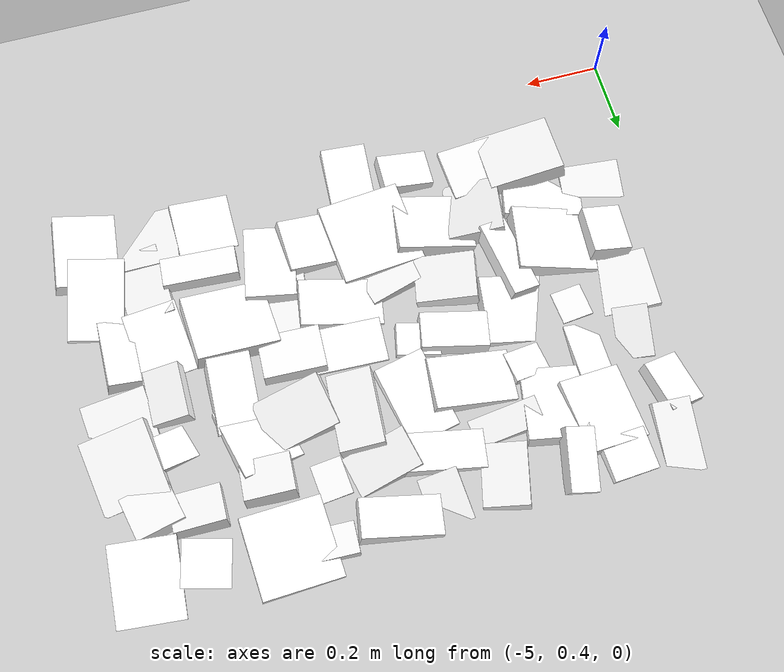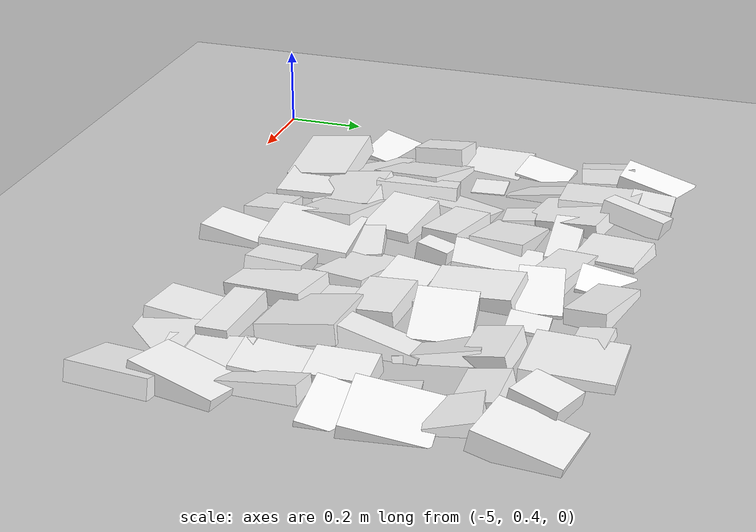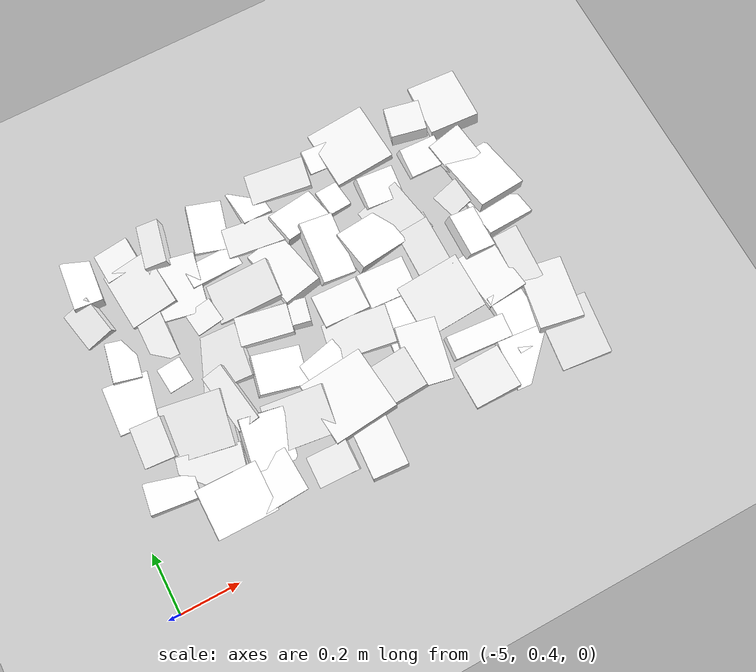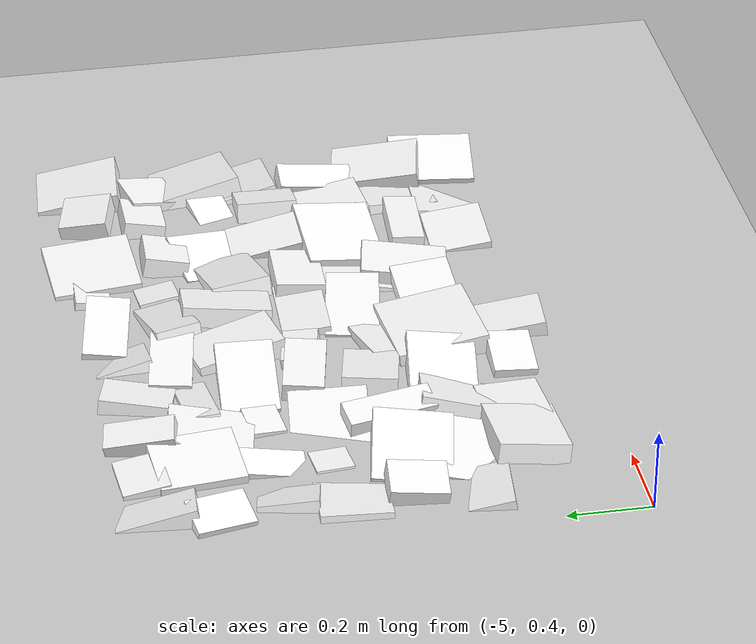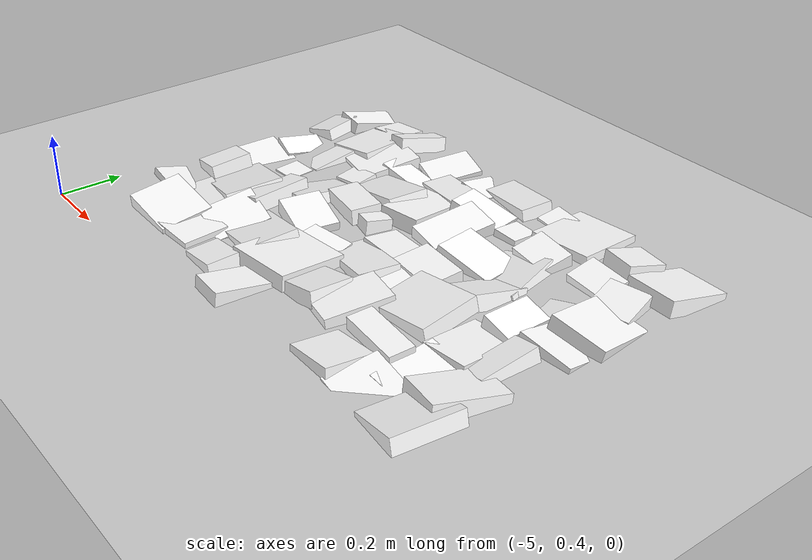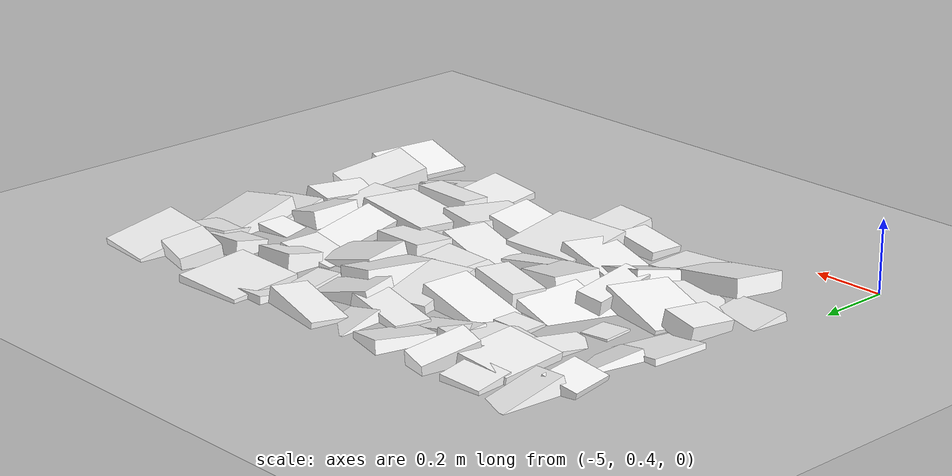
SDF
<sdf version="1.7">
 <world name="default">
  <include><uri>model://sun</uri></include>
  <include><uri>model://ground_plane</uri></include>
  <model name="static_environment">
   <static>true</static>
   <link name="region_10">
    <pose>-3.473362750436614 1.4968765971506124 0.008497881621787752 0.21216534981599583 0.05971173338387331 3.052792866354407</pose>
    <collision name="region_10_collision">
     <geometry><box><size>0.1706078242711454 0.20436977434464226 0.05</size></box></geometry>
     <surface><friction><ode><mu>1.0</mu><mu2>1.0</mu2></ode></friction></surface>
    </collision>
    <visual name="region_10_visual">
     <geometry><box><size>0.1706078242711454 0.20436977434464226 0.05</size></box></geometry>
     <material><ambient>1.0 1.0 1.0 1.0</ambient><diffuse>1.0 1.0 1.0 1.0</diffuse></material>
    </visual>
   </link>
   <link name="region_11">
    <pose>-3.6224159671087985 1.4945103725620028 0.022327791118140157 0.1785952794159718 0.0944638330162288 2.89314398437617</pose>
    <collision name="region_11_collision">
     <geometry><box><size>0.12292144664003718 0.11871850275099793 0.05</size></box></geometry>
     <surface><friction><ode><mu>1.0</mu><mu2>1.0</mu2></ode></friction></surface>
    </collision>
    <visual name="region_11_visual">
     <geometry><box><size>0.12292144664003718 0.11871850275099793 0.05</size></box></geometry>
     <material><ambient>1.0 1.0 1.0 1.0</ambient><diffuse>1.0 1.0 1.0 1.0</diffuse></material>
    </visual>
   </link>
   <link name="region_12">
    <pose>-3.829506450537181 1.5087423389290238 -0.005739150987846293 0.04787094714345319 0.05540352775220464 3.191309594198669</pose>
    <collision name="region_12_collision">
     <geometry><box><size>0.2100155249485474 0.2129797306443485 0.05</size></box></geometry>
     <surface><friction><ode><mu>1.0</mu><mu2>1.0</mu2></ode></friction></surface>
    </collision>
    <visual name="region_12_visual">
     <geometry><box><size>0.2100155249485474 0.2129797306443485 0.05</size></box></geometry>
     <material><ambient>1.0 1.0 1.0 1.0</ambient><diffuse>1.0 1.0 1.0 1.0</diffuse></material>
    </visual>
   </link>
   <link name="region_13">
    <pose>-3.931816957192507 1.5248667110693215 -0.015266268547873147 -0.14469618057355804 -0.061279608819677645 3.092923605086337</pose>
    <collision name="region_13_collision">
     <geometry><box><size>0.12184259952648774 0.0854810512144632 0.05</size></box></geometry>
     <surface><friction><ode><mu>1.0</mu><mu2>1.0</mu2></ode></friction></surface>
    </collision>
    <visual name="region_13_visual">
     <geometry><box><size>0.12184259952648774 0.0854810512144632 0.05</size></box></geometry>
     <material><ambient>1.0 1.0 1.0 1.0</ambient><diffuse>1.0 1.0 1.0 1.0</diffuse></material>
    </visual>
   </link>
   <link name="region_14">
    <pose>-4.104720120952562 1.509072116500127 0.000582147639666554 -0.08308375724269845 0.13923671692967232 2.9592175672838055</pose>
    <collision name="region_14_collision">
     <geometry><box><size>0.20777665416491922 0.10532315150551087 0.05</size></box></geometry>
     <surface><friction><ode><mu>1.0</mu><mu2>1.0</mu2></ode></friction></surface>
    </collision>
    <visual name="region_14_visual">
     <geometry><box><size>0.20777665416491922 0.10532315150551087 0.05</size></box></geometry>
     <material><ambient>1.0 1.0 1.0 1.0</ambient><diffuse>1.0 1.0 1.0 1.0</diffuse></material>
    </visual>
   </link>
   <link name="region_15">
    <pose>-4.232650342042872 1.4854369557738816 -0.01952572893342406 0.21533800719094315 -0.1868063581127013 3.194002695181782</pose>
    <collision name="region_15_collision">
     <geometry><box><size>0.10375661583833336 0.1353883721843947 0.05</size></box></geometry>
     <surface><friction><ode><mu>1.0</mu><mu2>1.0</mu2></ode></friction></surface>
    </collision>
    <visual name="region_15_visual">
     <geometry><box><size>0.10375661583833336 0.1353883721843947 0.05</size></box></geometry>
     <material><ambient>1.0 1.0 1.0 1.0</ambient><diffuse>1.0 1.0 1.0 1.0</diffuse></material>
    </visual>
   </link>
   <link name="region_16">
    <pose>-4.390292452083434 1.4742859318742112 -0.007227853759948867 -0.08263796126161371 -0.1612468163916323 2.8955016698911407</pose>
    <collision name="region_16_collision">
     <geometry><box><size>0.11851829048817407 0.16897940878838555 0.05</size></box></geometry>
     <surface><friction><ode><mu>1.0</mu><mu2>1.0</mu2></ode></friction></surface>
    </collision>
    <visual name="region_16_visual">
     <geometry><box><size>0.11851829048817407 0.16897940878838555 0.05</size></box></geometry>
     <material><ambient>1.0 1.0 1.0 1.0</ambient><diffuse>1.0 1.0 1.0 1.0</diffuse></material>
    </visual>
   </link>
   <link name="region_17">
    <pose>-4.574782697448905 1.4891763544308383 0.02343091644849834 0.18679127561850645 0.20639199708541217 2.976449130465943</pose>
    <collision name="region_17_collision">
     <geometry><box><size>0.07656576031420817 0.1646188206958685 0.05</size></box></geometry>
     <surface><friction><ode><mu>1.0</mu><mu2>1.0</mu2></ode></friction></surface>
    </collision>
    <visual name="region_17_visual">
     <geometry><box><size>0.07656576031420817 0.1646188206958685 0.05</size></box></geometry>
     <material><ambient>1.0 1.0 1.0 1.0</ambient><diffuse>1.0 1.0 1.0 1.0</diffuse></material>
    </visual>
   </link>
   <link name="region_18">
    <pose>-4.7004037098366815 1.5028867628276785 -0.004727280645749489 0.12120515658839681 0.07186650788260135 3.2211716753573354</pose>
    <collision name="region_18_collision">
     <geometry><box><size>0.12252118510335676 0.1112670353571094 0.05</size></box></geometry>
     <surface><friction><ode><mu>1.0</mu><mu2>1.0</mu2></ode></friction></surface>
    </collision>
    <visual name="region_18_visual">
     <geometry><box><size>0.12252118510335676 0.1112670353571094 0.05</size></box></geometry>
     <material><ambient>1.0 1.0 1.0 1.0</ambient><diffuse>1.0 1.0 1.0 1.0</diffuse></material>
    </visual>
   </link>
   <link name="region_19">
    <pose>-4.841374151645391 1.4881579180459148 -0.006208605234027005 0.24431393258757367 -0.07770252986004095 3.063222500325638</pose>
    <collision name="region_19_collision">
     <geometry><box><size>0.09738355279015998 0.18698756847086337 0.05</size></box></geometry>
     <surface><friction><ode><mu>1.0</mu><mu2>1.0</mu2></ode></friction></surface>
    </collision>
    <visual name="region_19_visual">
     <geometry><box><size>0.09738355279015998 0.18698756847086337 0.05</size></box></geometry>
     <material><ambient>1.0 1.0 1.0 1.0</ambient><diffuse>1.0 1.0 1.0 1.0</diffuse></material>
    </visual>
   </link>
   <link name="region_30">
    <pose>-3.5234894314026612 1.3313077117943863 0.0009624402382346839 -0.19368886047820688 -0.008037205267920233 3.3572441885021815</pose>
    <collision name="region_30_collision">
     <geometry><box><size>0.12956067281717265 0.12503417433243483 0.05</size></box></geometry>
     <surface><friction><ode><mu>1.0</mu><mu2>1.0</mu2></ode></friction></surface>
    </collision>
    <visual name="region_30_visual">
     <geometry><box><size>0.12956067281717265 0.12503417433243483 0.05</size></box></geometry>
     <material><ambient>1.0 1.0 1.0 1.0</ambient><diffuse>1.0 1.0 1.0 1.0</diffuse></material>
    </visual>
   </link>
   <link name="region_31">
    <pose>-3.631545388154425 1.3597970003477404 0.005671755726946132 -0.18805892253738415 -0.0742292266154223 3.128049900804863</pose>
    <collision name="region_31_collision">
     <geometry><box><size>0.134828279164239 0.10205879768003219 0.05</size></box></geometry>
     <surface><friction><ode><mu>1.0</mu><mu2>1.0</mu2></ode></friction></surface>
    </collision>
    <visual name="region_31_visual">
     <geometry><box><size>0.134828279164239 0.10205879768003219 0.05</size></box></geometry>
     <material><ambient>1.0 1.0 1.0 1.0</ambient><diffuse>1.0 1.0 1.0 1.0</diffuse></material>
    </visual>
   </link>
   <link name="region_32">
    <pose>-3.8162620925565705 1.3287364593638857 0.011471256058425666 -0.18849419529501205 -0.09011101296383955 3.0873298103264855</pose>
    <collision name="region_32_collision">
     <geometry><box><size>0.13175779509372743 0.10828854993342196 0.05</size></box></geometry>
     <surface><friction><ode><mu>1.0</mu><mu2>1.0</mu2></ode></friction></surface>
    </collision>
    <visual name="region_32_visual">
     <geometry><box><size>0.13175779509372743 0.10828854993342196 0.05</size></box></geometry>
     <material><ambient>1.0 1.0 1.0 1.0</ambient><diffuse>1.0 1.0 1.0 1.0</diffuse></material>
    </visual>
   </link>
   <link name="region_33">
    <pose>-3.9696359689108736 1.3663994010388827 -0.01304007294788302 0.12358504361697314 -0.07625290767795234 3.222106684100043</pose>
    <collision name="region_33_collision">
     <geometry><box><size>0.08069118291779179 0.09825169303578776 0.05</size></box></geometry>
     <surface><friction><ode><mu>1.0</mu><mu2>1.0</mu2></ode></friction></surface>
    </collision>
    <visual name="region_33_visual">
     <geometry><box><size>0.08069118291779179 0.09825169303578776 0.05</size></box></geometry>
     <material><ambient>1.0 1.0 1.0 1.0</ambient><diffuse>1.0 1.0 1.0 1.0</diffuse></material>
    </visual>
   </link>
   <link name="region_34">
    <pose>-4.104616422439544 1.36078717767662 0.005267264312795384 0.05434025327083025 -0.23025828911216734 3.3442179773874794</pose>
    <collision name="region_34_collision">
     <geometry><box><size>0.17318309997485784 0.10994639143384492 0.05</size></box></geometry>
     <surface><friction><ode><mu>1.0</mu><mu2>1.0</mu2></ode></friction></surface>
    </collision>
    <visual name="region_34_visual">
     <geometry><box><size>0.17318309997485784 0.10994639143384492 0.05</size></box></geometry>
     <material><ambient>1.0 1.0 1.0 1.0</ambient><diffuse>1.0 1.0 1.0 1.0</diffuse></material>
    </visual>
   </link>
   <link name="region_35">
    <pose>-4.2566006963007395 1.3746665404310054 -0.002393422491329074 -0.03335343160421389 0.10480613468346567 2.9719510689256263</pose>
    <collision name="region_35_collision">
     <geometry><box><size>0.20835845713492265 0.10180219240691474 0.05</size></box></geometry>
     <surface><friction><ode><mu>1.0</mu><mu2>1.0</mu2></ode></friction></surface>
    </collision>
    <visual name="region_35_visual">
     <geometry><box><size>0.20835845713492265 0.10180219240691474 0.05</size></box></geometry>
     <material><ambient>1.0 1.0 1.0 1.0</ambient><diffuse>1.0 1.0 1.0 1.0</diffuse></material>
    </visual>
   </link>
   <link name="region_36">
    <pose>-4.425429314786352 1.3427773074026264 -0.01253182385497399 0.006311672440037053 -0.17825987154003414 3.212327750667861</pose>
    <collision name="region_36_collision">
     <geometry><box><size>0.20456277387589664 0.07707938721720528 0.05</size></box></geometry>
     <surface><friction><ode><mu>1.0</mu><mu2>1.0</mu2></ode></friction></surface>
    </collision>
    <visual name="region_36_visual">
     <geometry><box><size>0.20456277387589664 0.07707938721720528 0.05</size></box></geometry>
     <material><ambient>1.0 1.0 1.0 1.0</ambient><diffuse>1.0 1.0 1.0 1.0</diffuse></material>
    </visual>
   </link>
   <link name="region_37">
    <pose>-4.563727412231285 1.3304996041569328 0.001321638220872317 -0.12907229563369083 -0.021892943865762793 2.94974100567346</pose>
    <collision name="region_37_collision">
     <geometry><box><size>0.15586582556977865 0.19948712636549865 0.05</size></box></geometry>
     <surface><friction><ode><mu>1.0</mu><mu2>1.0</mu2></ode></friction></surface>
    </collision>
    <visual name="region_37_visual">
     <geometry><box><size>0.15586582556977865 0.19948712636549865 0.05</size></box></geometry>
     <material><ambient>1.0 1.0 1.0 1.0</ambient><diffuse>1.0 1.0 1.0 1.0</diffuse></material>
    </visual>
   </link>
   <link name="region_38">
    <pose>-4.67513499138701 1.377287783219825 0.004076468464325696 0.0073451529404567895 0.13835810596043274 3.2275486630410373</pose>
    <collision name="region_38_collision">
     <geometry><box><size>0.16497099421032754 0.20049523390078045 0.05</size></box></geometry>
     <surface><friction><ode><mu>1.0</mu><mu2>1.0</mu2></ode></friction></surface>
    </collision>
    <visual name="region_38_visual">
     <geometry><box><size>0.16497099421032754 0.20049523390078045 0.05</size></box></geometry>
     <material><ambient>1.0 1.0 1.0 1.0</ambient><diffuse>1.0 1.0 1.0 1.0</diffuse></material>
    </visual>
   </link>
   <link name="region_39">
    <pose>-4.870611345780961 1.3542661527741293 0.0004551544841737039 -0.023110741954973257 0.24550563598248448 3.3415732761676304</pose>
    <collision name="region_39_collision">
     <geometry><box><size>0.09956813109950557 0.13913375327888608 0.05</size></box></geometry>
     <surface><friction><ode><mu>1.0</mu><mu2>1.0</mu2></ode></friction></surface>
    </collision>
    <visual name="region_39_visual">
     <geometry><box><size>0.09956813109950557 0.13913375327888608 0.05</size></box></geometry>
     <material><ambient>1.0 1.0 1.0 1.0</ambient><diffuse>1.0 1.0 1.0 1.0</diffuse></material>
    </visual>
   </link>
   <link name="region_50">
    <pose>-3.480928307321091 1.2037607284650844 0.0029844818684453094 0.17900631935587558 -0.14723269115528503 3.2493704583024297</pose>
    <collision name="region_50_collision">
     <geometry><box><size>0.17586759001589866 0.19882283950283314 0.05</size></box></geometry>
     <surface><friction><ode><mu>1.0</mu><mu2>1.0</mu2></ode></friction></surface>
    </collision>
    <visual name="region_50_visual">
     <geometry><box><size>0.17586759001589866 0.19882283950283314 0.05</size></box></geometry>
     <material><ambient>1.0 1.0 1.0 1.0</ambient><diffuse>1.0 1.0 1.0 1.0</diffuse></material>
    </visual>
   </link>
   <link name="region_51">
    <pose>-3.6289684788963914 1.1776662093576626 -0.02231428236665782 -0.01468467100861881 0.21937532283309652 3.36526915592996</pose>
    <collision name="region_51_collision">
     <geometry><box><size>0.19738073139330983 0.09289147850770733 0.05</size></box></geometry>
     <surface><friction><ode><mu>1.0</mu><mu2>1.0</mu2></ode></friction></surface>
    </collision>
    <visual name="region_51_visual">
     <geometry><box><size>0.19738073139330983 0.09289147850770733 0.05</size></box></geometry>
     <material><ambient>1.0 1.0 1.0 1.0</ambient><diffuse>1.0 1.0 1.0 1.0</diffuse></material>
    </visual>
   </link>
   <link name="region_52">
    <pose>-3.8148135336707725 1.2086346652459818 -0.01671098211213894 -0.12333865203501837 0.21567775039032122 3.3401658015141544</pose>
    <collision name="region_52_collision">
     <geometry><box><size>0.16301595016087692 0.19697033880860118 0.05</size></box></geometry>
     <surface><friction><ode><mu>1.0</mu><mu2>1.0</mu2></ode></friction></surface>
    </collision>
    <visual name="region_52_visual">
     <geometry><box><size>0.16301595016087692 0.19697033880860118 0.05</size></box></geometry>
     <material><ambient>1.0 1.0 1.0 1.0</ambient><diffuse>1.0 1.0 1.0 1.0</diffuse></material>
    </visual>
   </link>
   <link name="region_53">
    <pose>-3.9270557892126727 1.1804225975723166 0.0003933863012294918 0.049590323640137546 -0.23137801791927143 3.299269132694362</pose>
    <collision name="region_53_collision">
     <geometry><box><size>0.18643594893411278 0.1460255045102985 0.05</size></box></geometry>
     <surface><friction><ode><mu>1.0</mu><mu2>1.0</mu2></ode></friction></surface>
    </collision>
    <visual name="region_53_visual">
     <geometry><box><size>0.18643594893411278 0.1460255045102985 0.05</size></box></geometry>
     <material><ambient>1.0 1.0 1.0 1.0</ambient><diffuse>1.0 1.0 1.0 1.0</diffuse></material>
    </visual>
   </link>
   <link name="region_54">
    <pose>-4.0739063321990425 1.2174636176579425 0.016345515581136415 -0.09846852410530516 -0.1707248822704766 3.074724854780664</pose>
    <collision name="region_54_collision">
     <geometry><box><size>0.11723854043931331 0.21379516396226508 0.05</size></box></geometry>
     <surface><friction><ode><mu>1.0</mu><mu2>1.0</mu2></ode></friction></surface>
    </collision>
    <visual name="region_54_visual">
     <geometry><box><size>0.11723854043931331 0.21379516396226508 0.05</size></box></geometry>
     <material><ambient>1.0 1.0 1.0 1.0</ambient><diffuse>1.0 1.0 1.0 1.0</diffuse></material>
    </visual>
   </link>
   <link name="region_55">
    <pose>-4.23009598811861 1.220637864679023 0.009669756909560678 0.1489588365182375 -0.01771530415874556 3.3414561040527686</pose>
    <collision name="region_55_collision">
     <geometry><box><size>0.13398832391026191 0.2153750286485532 0.05</size></box></geometry>
     <surface><friction><ode><mu>1.0</mu><mu2>1.0</mu2></ode></friction></surface>
    </collision>
    <visual name="region_55_visual">
     <geometry><box><size>0.13398832391026191 0.2153750286485532 0.05</size></box></geometry>
     <material><ambient>1.0 1.0 1.0 1.0</ambient><diffuse>1.0 1.0 1.0 1.0</diffuse></material>
    </visual>
   </link>
   <link name="region_56">
    <pose>-4.375553415747021 1.2129772958151368 0.00709985102498982 0.012905547001975826 0.22210709675690143 3.0727662746604993</pose>
    <collision name="region_56_collision">
     <geometry><box><size>0.22055254854479442 0.1366784752471267 0.05</size></box></geometry>
     <surface><friction><ode><mu>1.0</mu><mu2>1.0</mu2></ode></friction></surface>
    </collision>
    <visual name="region_56_visual">
     <geometry><box><size>0.22055254854479442 0.1366784752471267 0.05</size></box></geometry>
     <material><ambient>1.0 1.0 1.0 1.0</ambient><diffuse>1.0 1.0 1.0 1.0</diffuse></material>
    </visual>
   </link>
   <link name="region_57">
    <pose>-4.531402227600461 1.2025063731538712 -0.01303486854201365 -0.0789084575708246 0.07882783631365653 3.265805890295087</pose>
    <collision name="region_57_collision">
     <geometry><box><size>0.0959835802704287 0.0840426457400242 0.05</size></box></geometry>
     <surface><friction><ode><mu>1.0</mu><mu2>1.0</mu2></ode></friction></surface>
    </collision>
    <visual name="region_57_visual">
     <geometry><box><size>0.0959835802704287 0.0840426457400242 0.05</size></box></geometry>
     <material><ambient>1.0 1.0 1.0 1.0</ambient><diffuse>1.0 1.0 1.0 1.0</diffuse></material>
    </visual>
   </link>
   <link name="region_58">
    <pose>-4.693642252412237 1.2179616243971907 -0.013784937435933437 -0.1692245233500841 0.12528366364208948 3.085437863658262</pose>
    <collision name="region_58_collision">
     <geometry><box><size>0.08780393824888337 0.16833462766891255 0.05</size></box></geometry>
     <surface><friction><ode><mu>1.0</mu><mu2>1.0</mu2></ode></friction></surface>
    </collision>
    <visual name="region_58_visual">
     <geometry><box><size>0.08780393824888337 0.16833462766891255 0.05</size></box></geometry>
     <material><ambient>1.0 1.0 1.0 1.0</ambient><diffuse>1.0 1.0 1.0 1.0</diffuse></material>
    </visual>
   </link>
   <link name="region_59">
    <pose>-4.8319949755964 1.1910136078336617 -0.015056601178488694 0.1328100015613125 -0.2171663236751663 2.9392929184568803</pose>
    <collision name="region_59_collision">
     <geometry><box><size>0.09323084729013409 0.14065479251009633 0.05</size></box></geometry>
     <surface><friction><ode><mu>1.0</mu><mu2>1.0</mu2></ode></friction></surface>
    </collision>
    <visual name="region_59_visual">
     <geometry><box><size>0.09323084729013409 0.14065479251009633 0.05</size></box></geometry>
     <material><ambient>1.0 1.0 1.0 1.0</ambient><diffuse>1.0 1.0 1.0 1.0</diffuse></material>
    </visual>
   </link>
   <link name="region_70">
    <pose>-3.491235007518494 1.0757883341180117 -0.01366047264301244 0.19851755597599008 -0.12249757079299978 3.202418016284161</pose>
    <collision name="region_70_collision">
     <geometry><box><size>0.17199956367881825 0.13466124031310217 0.05</size></box></geometry>
     <surface><friction><ode><mu>1.0</mu><mu2>1.0</mu2></ode></friction></surface>
    </collision>
    <visual name="region_70_visual">
     <geometry><box><size>0.17199956367881825 0.13466124031310217 0.05</size></box></geometry>
     <material><ambient>1.0 1.0 1.0 1.0</ambient><diffuse>1.0 1.0 1.0 1.0</diffuse></material>
    </visual>
   </link>
   <link name="region_71">
    <pose>-3.6230364368534937 1.0471963687658001 0.011421832009749569 -0.011167872114045019 -0.22162480456825373 3.131703125805108</pose>
    <collision name="region_71_collision">
     <geometry><box><size>0.09718251830032122 0.14906649547310374 0.05</size></box></geometry>
     <surface><friction><ode><mu>1.0</mu><mu2>1.0</mu2></ode></friction></surface>
    </collision>
    <visual name="region_71_visual">
     <geometry><box><size>0.09718251830032122 0.14906649547310374 0.05</size></box></geometry>
     <material><ambient>1.0 1.0 1.0 1.0</ambient><diffuse>1.0 1.0 1.0 1.0</diffuse></material>
    </visual>
   </link>
   <link name="region_72">
    <pose>-3.782638485669364 1.0732215696160659 0.0039395518368402285 0.23951214188447767 0.19850751868958688 3.122491518853824</pose>
    <collision name="region_72_collision">
     <geometry><box><size>0.11461537412358669 0.22075162058865685 0.05</size></box></geometry>
     <surface><friction><ode><mu>1.0</mu><mu2>1.0</mu2></ode></friction></surface>
    </collision>
    <visual name="region_72_visual">
     <geometry><box><size>0.11461537412358669 0.22075162058865685 0.05</size></box></geometry>
     <material><ambient>1.0 1.0 1.0 1.0</ambient><diffuse>1.0 1.0 1.0 1.0</diffuse></material>
    </visual>
   </link>
   <link name="region_73">
    <pose>-3.954733671225889 1.0230104297810685 0.011295745139574154 -0.07839194552425655 -0.030481082231647083 3.090407632894602</pose>
    <collision name="region_73_collision">
     <geometry><box><size>0.16425957500197325 0.11947550413600536 0.05</size></box></geometry>
     <surface><friction><ode><mu>1.0</mu><mu2>1.0</mu2></ode></friction></surface>
    </collision>
    <visual name="region_73_visual">
     <geometry><box><size>0.16425957500197325 0.11947550413600536 0.05</size></box></geometry>
     <material><ambient>1.0 1.0 1.0 1.0</ambient><diffuse>1.0 1.0 1.0 1.0</diffuse></material>
    </visual>
   </link>
   <link name="region_74">
    <pose>-4.093219173894692 1.0333424950157424 -0.009679268526127122 0.117204106528009 0.01192806371981936 3.100997752183631</pose>
    <collision name="region_74_collision">
     <geometry><box><size>0.2043672520689068 0.11664214615330043 0.05</size></box></geometry>
     <surface><friction><ode><mu>1.0</mu><mu2>1.0</mu2></ode></friction></surface>
    </collision>
    <visual name="region_74_visual">
     <geometry><box><size>0.2043672520689068 0.11664214615330043 0.05</size></box></geometry>
     <material><ambient>1.0 1.0 1.0 1.0</ambient><diffuse>1.0 1.0 1.0 1.0</diffuse></material>
    </visual>
   </link>
   <link name="region_75">
    <pose>-4.277975532540291 1.0696635661106113 0.009349955567536282 0.1325342098807925 0.0589887690794354 2.9199039283987456</pose>
    <collision name="region_75_collision">
     <geometry><box><size>0.11452556950313356 0.08471425222467681 0.05</size></box></geometry>
     <surface><friction><ode><mu>1.0</mu><mu2>1.0</mu2></ode></friction></surface>
    </collision>
    <visual name="region_75_visual">
     <geometry><box><size>0.11452556950313356 0.08471425222467681 0.05</size></box></geometry>
     <material><ambient>1.0 1.0 1.0 1.0</ambient><diffuse>1.0 1.0 1.0 1.0</diffuse></material>
    </visual>
   </link>
   <link name="region_76">
    <pose>-4.372000684190178 1.0773626707146435 0.023169408026844897 -0.03278283385112546 0.07225885500322915 2.9307758555612837</pose>
    <collision name="region_76_collision">
     <geometry><box><size>0.17652858064480959 0.09761456554277732 0.05</size></box></geometry>
     <surface><friction><ode><mu>1.0</mu><mu2>1.0</mu2></ode></friction></surface>
    </collision>
    <visual name="region_76_visual">
     <geometry><box><size>0.17652858064480959 0.09761456554277732 0.05</size></box></geometry>
     <material><ambient>1.0 1.0 1.0 1.0</ambient><diffuse>1.0 1.0 1.0 1.0</diffuse></material>
    </visual>
   </link>
   <link name="region_77">
    <pose>-4.5605963805634 1.0506735545128574 -0.015158519418853234 0.06480472551673488 0.24451500826543682 3.0281205584416404</pose>
    <collision name="region_77_collision">
     <geometry><box><size>0.20808565689236805 0.18398983290280238 0.05</size></box></geometry>
     <surface><friction><ode><mu>1.0</mu><mu2>1.0</mu2></ode></friction></surface>
    </collision>
    <visual name="region_77_visual">
     <geometry><box><size>0.20808565689236805 0.18398983290280238 0.05</size></box></geometry>
     <material><ambient>1.0 1.0 1.0 1.0</ambient><diffuse>1.0 1.0 1.0 1.0</diffuse></material>
    </visual>
   </link>
   <link name="region_78">
    <pose>-4.700334947580579 1.073358187110819 -0.022494192682623933 -0.0009050964292098285 -0.040364566616187036 3.2325487801938597</pose>
    <collision name="region_78_collision">
     <geometry><box><size>0.08336678809866709 0.08917953976129367 0.05</size></box></geometry>
     <surface><friction><ode><mu>1.0</mu><mu2>1.0</mu2></ode></friction></surface>
    </collision>
    <visual name="region_78_visual">
     <geometry><box><size>0.08336678809866709 0.08917953976129367 0.05</size></box></geometry>
     <material><ambient>1.0 1.0 1.0 1.0</ambient><diffuse>1.0 1.0 1.0 1.0</diffuse></material>
    </visual>
   </link>
   <link name="region_79">
    <pose>-4.849295872863113 1.0516525113164488 -0.020205250799934817 -0.017132593053686418 -0.1159189016505972 3.0848015500650856</pose>
    <collision name="region_79_collision">
     <geometry><box><size>0.1680042624348622 0.16523833490421933 0.05</size></box></geometry>
     <surface><friction><ode><mu>1.0</mu><mu2>1.0</mu2></ode></friction></surface>
    </collision>
    <visual name="region_79_visual">
     <geometry><box><size>0.1680042624348622 0.16523833490421933 0.05</size></box></geometry>
     <material><ambient>1.0 1.0 1.0 1.0</ambient><diffuse>1.0 1.0 1.0 1.0</diffuse></material>
    </visual>
   </link>
   <link name="region_90">
    <pose>-3.522752644685981 0.9034094931863955 0.002030015380881517 -0.1133726761692857 0.18366987341869911 3.112184939321855</pose>
    <collision name="region_90_collision">
     <geometry><box><size>0.08632195482257947 0.187184255299073 0.05</size></box></geometry>
     <surface><friction><ode><mu>1.0</mu><mu2>1.0</mu2></ode></friction></surface>
    </collision>
    <visual name="region_90_visual">
     <geometry><box><size>0.08632195482257947 0.187184255299073 0.05</size></box></geometry>
     <material><ambient>1.0 1.0 1.0 1.0</ambient><diffuse>1.0 1.0 1.0 1.0</diffuse></material>
    </visual>
   </link>
   <link name="region_91">
    <pose>-3.6315591783065773 0.8947719336226974 -0.011699979228121021 0.11835200727548906 0.014643537939566242 3.243321142662028</pose>
    <collision name="region_91_collision">
     <geometry><box><size>0.1439511231999984 0.197233642775333 0.05</size></box></geometry>
     <surface><friction><ode><mu>1.0</mu><mu2>1.0</mu2></ode></friction></surface>
    </collision>
    <visual name="region_91_visual">
     <geometry><box><size>0.1439511231999984 0.197233642775333 0.05</size></box></geometry>
     <material><ambient>1.0 1.0 1.0 1.0</ambient><diffuse>1.0 1.0 1.0 1.0</diffuse></material>
    </visual>
   </link>
   <link name="region_92">
    <pose>-3.818973115534253 0.8978518623637425 0.01872559915359156 -0.12133246685449334 0.14066915408774605 3.178220320530982</pose>
    <collision name="region_92_collision">
     <geometry><box><size>0.2196333035259809 0.18890119516313156 0.05</size></box></geometry>
     <surface><friction><ode><mu>1.0</mu><mu2>1.0</mu2></ode></friction></surface>
    </collision>
    <visual name="region_92_visual">
     <geometry><box><size>0.2196333035259809 0.18890119516313156 0.05</size></box></geometry>
     <material><ambient>1.0 1.0 1.0 1.0</ambient><diffuse>1.0 1.0 1.0 1.0</diffuse></material>
    </visual>
   </link>
   <link name="region_93">
    <pose>-3.9746511648806493 0.8855452130229322 -0.01350389620680082 -0.13503114956618806 -0.11308812755218606 3.030342850002796</pose>
    <collision name="region_93_collision">
     <geometry><box><size>0.11733487796048803 0.1829816673202897 0.05</size></box></geometry>
     <surface><friction><ode><mu>1.0</mu><mu2>1.0</mu2></ode></friction></surface>
    </collision>
    <visual name="region_93_visual">
     <geometry><box><size>0.11733487796048803 0.1829816673202897 0.05</size></box></geometry>
     <material><ambient>1.0 1.0 1.0 1.0</ambient><diffuse>1.0 1.0 1.0 1.0</diffuse></material>
    </visual>
   </link>
   <link name="region_94">
    <pose>-4.1098939730351285 0.9142433043660096 -0.0018937506045361707 -0.003323054464851094 0.16492755509736245 2.9592535085027</pose>
    <collision name="region_94_collision">
     <geometry><box><size>0.2195785116419252 0.12880104693962424 0.05</size></box></geometry>
     <surface><friction><ode><mu>1.0</mu><mu2>1.0</mu2></ode></friction></surface>
    </collision>
    <visual name="region_94_visual">
     <geometry><box><size>0.2195785116419252 0.12880104693962424 0.05</size></box></geometry>
     <material><ambient>1.0 1.0 1.0 1.0</ambient><diffuse>1.0 1.0 1.0 1.0</diffuse></material>
    </visual>
   </link>
   <link name="region_95">
    <pose>-4.264701007947153 0.8845850804206271 -0.006587288463088866 -0.08489723056268433 -0.09251317923114566 3.390356148140093</pose>
    <collision name="region_95_collision">
     <geometry><box><size>0.15284155814154704 0.08084759896191056 0.05</size></box></geometry>
     <surface><friction><ode><mu>1.0</mu><mu2>1.0</mu2></ode></friction></surface>
    </collision>
    <visual name="region_95_visual">
     <geometry><box><size>0.15284155814154704 0.08084759896191056 0.05</size></box></geometry>
     <material><ambient>1.0 1.0 1.0 1.0</ambient><diffuse>1.0 1.0 1.0 1.0</diffuse></material>
    </visual>
   </link>
   <link name="region_96">
    <pose>-4.398490035321812 0.9256601643339442 0.01419072840014507 -0.014704855726002553 -0.17568101276567738 2.9280230514851793</pose>
    <collision name="region_96_collision">
     <geometry><box><size>0.16148060317409516 0.13116765023311516 0.05</size></box></geometry>
     <surface><friction><ode><mu>1.0</mu><mu2>1.0</mu2></ode></friction></surface>
    </collision>
    <visual name="region_96_visual">
     <geometry><box><size>0.16148060317409516 0.13116765023311516 0.05</size></box></geometry>
     <material><ambient>1.0 1.0 1.0 1.0</ambient><diffuse>1.0 1.0 1.0 1.0</diffuse></material>
    </visual>
   </link>
   <link name="region_97">
    <pose>-4.569865296714866 0.9148454691223769 0.023927856667056872 0.04160877608265512 0.1769217869342865 3.302307550590467</pose>
    <collision name="region_97_collision">
     <geometry><box><size>0.07534728530428075 0.2108118419155048 0.05</size></box></geometry>
     <surface><friction><ode><mu>1.0</mu><mu2>1.0</mu2></ode></friction></surface>
    </collision>
    <visual name="region_97_visual">
     <geometry><box><size>0.07534728530428075 0.2108118419155048 0.05</size></box></geometry>
     <material><ambient>1.0 1.0 1.0 1.0</ambient><diffuse>1.0 1.0 1.0 1.0</diffuse></material>
    </visual>
   </link>
   <link name="region_98">
    <pose>-4.705321453001212 0.8887291066425931 0.001375391943081776 -0.08812952643299632 0.22239970053089525 2.9350676518982435</pose>
    <collision name="region_98_collision">
     <geometry><box><size>0.216247151382206 0.18567707261419836 0.05</size></box></geometry>
     <surface><friction><ode><mu>1.0</mu><mu2>1.0</mu2></ode></friction></surface>
    </collision>
    <visual name="region_98_visual">
     <geometry><box><size>0.216247151382206 0.18567707261419836 0.05</size></box></geometry>
     <material><ambient>1.0 1.0 1.0 1.0</ambient><diffuse>1.0 1.0 1.0 1.0</diffuse></material>
    </visual>
   </link>
   <link name="region_99">
    <pose>-4.8469409004973745 0.905338400491434 0.01705347576715232 -0.10007524107078969 0.15243612454562933 3.0451640807492137</pose>
    <collision name="region_99_collision">
     <geometry><box><size>0.10450879493199686 0.13548722709413455 0.05</size></box></geometry>
     <surface><friction><ode><mu>1.0</mu><mu2>1.0</mu2></ode></friction></surface>
    </collision>
    <visual name="region_99_visual">
     <geometry><box><size>0.10450879493199686 0.13548722709413455 0.05</size></box></geometry>
     <material><ambient>1.0 1.0 1.0 1.0</ambient><diffuse>1.0 1.0 1.0 1.0</diffuse></material>
    </visual>
   </link>
   <link name="region_110">
    <pose>-3.4953328989591412 0.7393782897052659 0.008970611509386862 0.17180837962458978 0.12766514510208288 2.9420923442631235</pose>
    <collision name="region_110_collision">
     <geometry><box><size>0.14625997580785893 0.21992574860243916 0.05</size></box></geometry>
     <surface><friction><ode><mu>1.0</mu><mu2>1.0</mu2></ode></friction></surface>
    </collision>
    <visual name="region_110_visual">
     <geometry><box><size>0.14625997580785893 0.21992574860243916 0.05</size></box></geometry>
     <material><ambient>1.0 1.0 1.0 1.0</ambient><diffuse>1.0 1.0 1.0 1.0</diffuse></material>
    </visual>
   </link>
   <link name="region_111">
    <pose>-3.6270084310150144 0.7239052392283457 -0.01631395893301179 -0.07280291376155806 -0.151357109972319 3.202170947746782</pose>
    <collision name="region_111_collision">
     <geometry><box><size>0.12431086424980137 0.2076339530002352 0.05</size></box></geometry>
     <surface><friction><ode><mu>1.0</mu><mu2>1.0</mu2></ode></friction></surface>
    </collision>
    <visual name="region_111_visual">
     <geometry><box><size>0.12431086424980137 0.2076339530002352 0.05</size></box></geometry>
     <material><ambient>1.0 1.0 1.0 1.0</ambient><diffuse>1.0 1.0 1.0 1.0</diffuse></material>
    </visual>
   </link>
   <link name="region_112">
    <pose>-3.778175013875222 0.7240197345236051 0.01399692015208958 -0.046615869050720904 -0.02738273887448761 3.0693644658430554</pose>
    <collision name="region_112_collision">
     <geometry><box><size>0.20036749075341012 0.07985500044898025 0.05</size></box></geometry>
     <surface><friction><ode><mu>1.0</mu><mu2>1.0</mu2></ode></friction></surface>
    </collision>
    <visual name="region_112_visual">
     <geometry><box><size>0.20036749075341012 0.07985500044898025 0.05</size></box></geometry>
     <material><ambient>1.0 1.0 1.0 1.0</ambient><diffuse>1.0 1.0 1.0 1.0</diffuse></material>
    </visual>
   </link>
   <link name="region_113">
    <pose>-3.9602337321143284 0.7607727591825375 0.011434388611345131 -0.08976369764080722 0.010218295815222933 2.94644683422042</pose>
    <collision name="region_113_collision">
     <geometry><box><size>0.1346481891214402 0.2071371489773793 0.05</size></box></geometry>
     <surface><friction><ode><mu>1.0</mu><mu2>1.0</mu2></ode></friction></surface>
    </collision>
    <visual name="region_113_visual">
     <geometry><box><size>0.1346481891214402 0.2071371489773793 0.05</size></box></geometry>
     <material><ambient>1.0 1.0 1.0 1.0</ambient><diffuse>1.0 1.0 1.0 1.0</diffuse></material>
    </visual>
   </link>
   <link name="region_114">
    <pose>-4.097872983093902 0.7281609150140587 0.010957479024783764 0.07465130409613385 0.20141453226591394 3.1858359376754612</pose>
    <collision name="region_114_collision">
     <geometry><box><size>0.1947871451714058 0.14178322460728265 0.05</size></box></geometry>
     <surface><friction><ode><mu>1.0</mu><mu2>1.0</mu2></ode></friction></surface>
    </collision>
    <visual name="region_114_visual">
     <geometry><box><size>0.1947871451714058 0.14178322460728265 0.05</size></box></geometry>
     <material><ambient>1.0 1.0 1.0 1.0</ambient><diffuse>1.0 1.0 1.0 1.0</diffuse></material>
    </visual>
   </link>
   <link name="region_115">
    <pose>-4.24034020295751 0.7473840257176911 0.015968683434390514 0.10107900919823626 0.01922453332087143 3.2351691801716727</pose>
    <collision name="region_115_collision">
     <geometry><box><size>0.22254151582764767 0.22039844042800075 0.05</size></box></geometry>
     <surface><friction><ode><mu>1.0</mu><mu2>1.0</mu2></ode></friction></surface>
    </collision>
    <visual name="region_115_visual">
     <geometry><box><size>0.22254151582764767 0.22039844042800075 0.05</size></box></geometry>
     <material><ambient>1.0 1.0 1.0 1.0</ambient><diffuse>1.0 1.0 1.0 1.0</diffuse></material>
    </visual>
   </link>
   <link name="region_116">
    <pose>-4.40742618718104 0.7587752289522686 0.004812675924992203 -0.10421538335732533 0.20051497950389108 2.9948268329833008</pose>
    <collision name="region_116_collision">
     <geometry><box><size>0.21086908692705844 0.1608902542087511 0.05</size></box></geometry>
     <surface><friction><ode><mu>1.0</mu><mu2>1.0</mu2></ode></friction></surface>
    </collision>
    <visual name="region_116_visual">
     <geometry><box><size>0.21086908692705844 0.1608902542087511 0.05</size></box></geometry>
     <material><ambient>1.0 1.0 1.0 1.0</ambient><diffuse>1.0 1.0 1.0 1.0</diffuse></material>
    </visual>
   </link>
   <link name="region_117">
    <pose>-4.530729796468622 0.7501529122327147 0.00629251016251163 -0.20471145422500292 -0.2305107466006 3.005366541953356</pose>
    <collision name="region_117_collision">
     <geometry><box><size>0.14883329553901728 0.17398519567534498 0.05</size></box></geometry>
     <surface><friction><ode><mu>1.0</mu><mu2>1.0</mu2></ode></friction></surface>
    </collision>
    <visual name="region_117_visual">
     <geometry><box><size>0.14883329553901728 0.17398519567534498 0.05</size></box></geometry>
     <material><ambient>1.0 1.0 1.0 1.0</ambient><diffuse>1.0 1.0 1.0 1.0</diffuse></material>
    </visual>
   </link>
   <link name="region_118">
    <pose>-4.720386531818148 0.7555285943739584 -0.01773809162063641 -0.12989685375561155 0.08765940378338455 2.8986173726405835</pose>
    <collision name="region_118_collision">
     <geometry><box><size>0.21415724890823892 0.11387425461242218 0.05</size></box></geometry>
     <surface><friction><ode><mu>1.0</mu><mu2>1.0</mu2></ode></friction></surface>
    </collision>
    <visual name="region_118_visual">
     <geometry><box><size>0.21415724890823892 0.11387425461242218 0.05</size></box></geometry>
     <material><ambient>1.0 1.0 1.0 1.0</ambient><diffuse>1.0 1.0 1.0 1.0</diffuse></material>
    </visual>
   </link>
   <link name="region_119">
    <pose>-4.866616325457331 0.7410159075540297 -0.017204279416508112 0.2198593919621069 -0.036365169452325485 3.026247928086484</pose>
    <collision name="region_119_collision">
     <geometry><box><size>0.16416076170619806 0.10622455494024315 0.05</size></box></geometry>
     <surface><friction><ode><mu>1.0</mu><mu2>1.0</mu2></ode></friction></surface>
    </collision>
    <visual name="region_119_visual">
     <geometry><box><size>0.16416076170619806 0.10622455494024315 0.05</size></box></geometry>
     <material><ambient>1.0 1.0 1.0 1.0</ambient><diffuse>1.0 1.0 1.0 1.0</diffuse></material>
    </visual>
   </link>
   <link name="region_130">
    <pose>-3.4922629295971306 0.5959158536080889 0.006568006959826914 -0.0055398618858787385 0.22804185539591587 3.023004547890952</pose>
    <collision name="region_130_collision">
     <geometry><box><size>0.1640660648733593 0.20913328548267288 0.05</size></box></geometry>
     <surface><friction><ode><mu>1.0</mu><mu2>1.0</mu2></ode></friction></surface>
    </collision>
    <visual name="region_130_visual">
     <geometry><box><size>0.1640660648733593 0.20913328548267288 0.05</size></box></geometry>
     <material><ambient>1.0 1.0 1.0 1.0</ambient><diffuse>1.0 1.0 1.0 1.0</diffuse></material>
    </visual>
   </link>
   <link name="region_131">
    <pose>-3.648373527006152 0.5947880951270129 -0.023319140893328788 -0.11848757534612836 -0.13990396817205109 3.070749420234047</pose>
    <collision name="region_131_collision">
     <geometry><box><size>0.1927850153646151 0.16695596059760995 0.05</size></box></geometry>
     <surface><friction><ode><mu>1.0</mu><mu2>1.0</mu2></ode></friction></surface>
    </collision>
    <visual name="region_131_visual">
     <geometry><box><size>0.1927850153646151 0.16695596059760995 0.05</size></box></geometry>
     <material><ambient>1.0 1.0 1.0 1.0</ambient><diffuse>1.0 1.0 1.0 1.0</diffuse></material>
    </visual>
   </link>
   <link name="region_132">
    <pose>-3.8130432648049815 0.5963063886739338 -0.007617025520392406 0.11973167539864021 0.11310366122033366 3.1417136245198183</pose>
    <collision name="region_132_collision">
     <geometry><box><size>0.15815211331805767 0.14937282128342147 0.05</size></box></geometry>
     <surface><friction><ode><mu>1.0</mu><mu2>1.0</mu2></ode></friction></surface>
    </collision>
    <visual name="region_132_visual">
     <geometry><box><size>0.15815211331805767 0.14937282128342147 0.05</size></box></geometry>
     <material><ambient>1.0 1.0 1.0 1.0</ambient><diffuse>1.0 1.0 1.0 1.0</diffuse></material>
    </visual>
   </link>
   <link name="region_135">
    <pose>-4.2259383029663695 0.5847000216087276 -0.0037026635300198736 0.15818253985080866 0.03394616841524495 3.077240296913267</pose>
    <collision name="region_135_collision">
     <geometry><box><size>0.12095090418604272 0.224739495464232 0.05</size></box></geometry>
     <surface><friction><ode><mu>1.0</mu><mu2>1.0</mu2></ode></friction></surface>
    </collision>
    <visual name="region_135_visual">
     <geometry><box><size>0.12095090418604272 0.224739495464232 0.05</size></box></geometry>
     <material><ambient>1.0 1.0 1.0 1.0</ambient><diffuse>1.0 1.0 1.0 1.0</diffuse></material>
    </visual>
   </link>
   <link name="region_136">
    <pose>-4.378785905032851 0.5858798009585618 0.004238206458930936 -0.05363359997818429 0.1552629733575982 3.0993602494009798</pose>
    <collision name="region_136_collision">
     <geometry><box><size>0.13699257528748074 0.10370538693956385 0.05</size></box></geometry>
     <surface><friction><ode><mu>1.0</mu><mu2>1.0</mu2></ode></friction></surface>
    </collision>
    <visual name="region_136_visual">
     <geometry><box><size>0.13699257528748074 0.10370538693956385 0.05</size></box></geometry>
     <material><ambient>1.0 1.0 1.0 1.0</ambient><diffuse>1.0 1.0 1.0 1.0</diffuse></material>
    </visual>
   </link>
   <link name="region_137">
    <pose>-4.568375600816374 0.6228613020676033 -0.0053349668206515224 -0.013343253054145576 -0.04038233263856855 3.1961608564960153</pose>
    <collision name="region_137_collision">
     <geometry><box><size>0.15732103376469306 0.14947723644080474 0.05</size></box></geometry>
     <surface><friction><ode><mu>1.0</mu><mu2>1.0</mu2></ode></friction></surface>
    </collision>
    <visual name="region_137_visual">
     <geometry><box><size>0.15732103376469306 0.14947723644080474 0.05</size></box></geometry>
     <material><ambient>1.0 1.0 1.0 1.0</ambient><diffuse>1.0 1.0 1.0 1.0</diffuse></material>
    </visual>
   </link>
   <link name="region_138">
    <pose>-4.697940206859725 0.6249724349372511 0.015335434540967682 -0.12772019359927494 -0.13984663478878673 3.1428504137177904</pose>
    <collision name="region_138_collision">
     <geometry><box><size>0.20415039297976195 0.16852878841279345 0.05</size></box></geometry>
     <surface><friction><ode><mu>1.0</mu><mu2>1.0</mu2></ode></friction></surface>
    </collision>
    <visual name="region_138_visual">
     <geometry><box><size>0.20415039297976195 0.16852878841279345 0.05</size></box></geometry>
     <material><ambient>1.0 1.0 1.0 1.0</ambient><diffuse>1.0 1.0 1.0 1.0</diffuse></material>
    </visual>
   </link>
  </model>
 </world>
</sdf>
